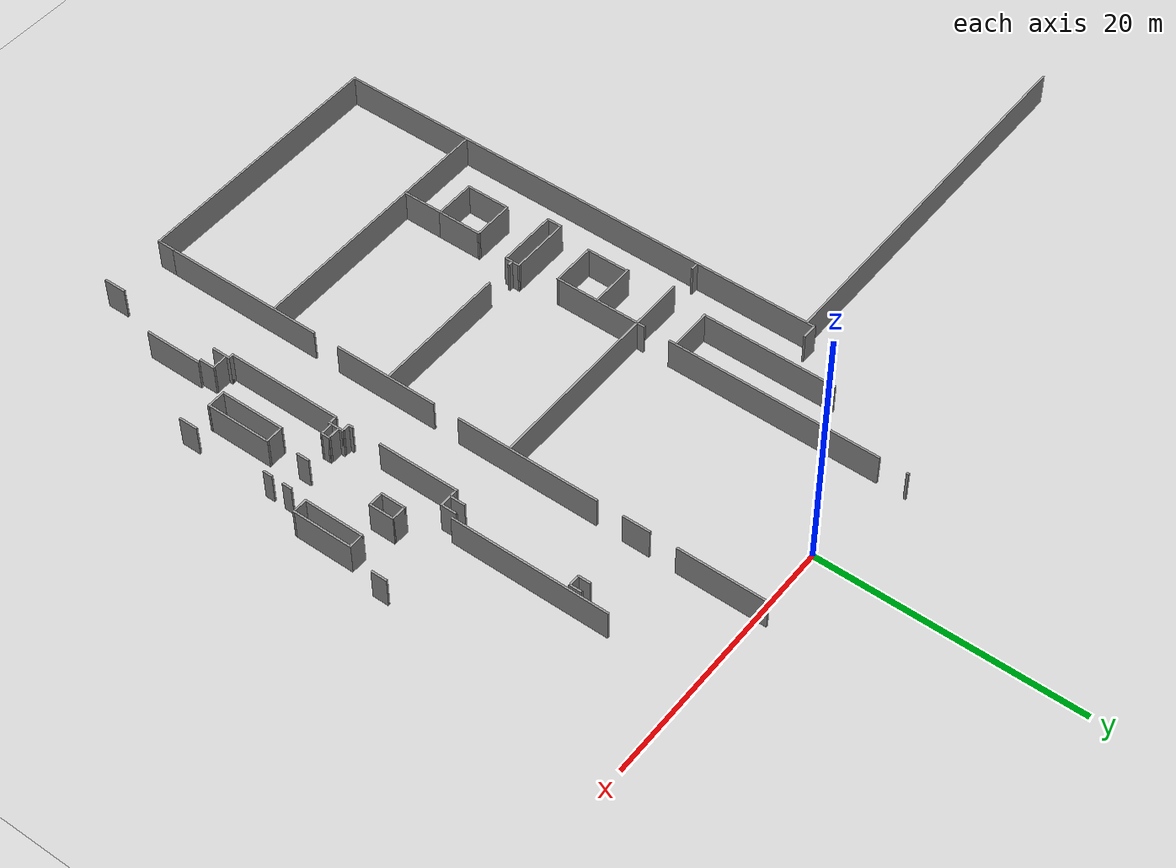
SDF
<sdf version="1.6">
 <world name="default">
  <model name="ground_plane">
   <static>1</static>
   <link name="link">
    <collision name="collision">
     <geometry><plane><normal>0 0 1</normal><size>100 100</size></plane></geometry>
     <surface><friction><ode><mu>100</mu><mu2>50</mu2></ode></friction></surface>
    </collision>
    <visual name="visual">
     <cast_shadows>0</cast_shadows>
     <geometry><plane><normal>0 0 1</normal><size>100 100</size></plane></geometry>
     <material>
      <script><uri>file://media/materials/scripts/gazebo.material</uri><name>Gazebo/Grey</name></script>
     </material>
    </visual>
   </link>
  </model>
  <model name="SEH_v11">
   <pose>0.537033 1.18809 0 0 -0 0</pose>
   <link name="Wall_1">
    <collision name="Wall_1_Collision">
     <geometry><box><size>39.75 0.15 2.5</size></box></geometry>
     <pose>0 0 1.25 0 -0 0</pose>
    </collision>
    <visual name="Wall_1_Visual">
     <pose>0 0 1.25 0 -0 0</pose>
     <geometry><box><size>39.75 0.15 2.5</size></box></geometry>
     <material>
      <script><uri>file://media/materials/scripts/gazebo.material</uri><name>Gazebo/Grey</name></script>
      <ambient>1 1 1 1</ambient>
     </material>
     <meta><layer>0</layer></meta>
    </visual>
    <pose>-14.7042 -30.8362 0 0 0 -1.5708</pose>
   </link>
   <link name="Wall_117">
    <collision name="Wall_117_Collision">
     <geometry><box><size>1.25 0.15 2.5</size></box></geometry>
     <pose>0 0 1.25 0 -0 0</pose>
    </collision>
    <visual name="Wall_117_Visual">
     <pose>0 0 1.25 0 -0 0</pose>
     <geometry><box><size>1.25 0.15 2.5</size></box></geometry>
     <material>
      <script><uri>file://media/materials/scripts/gazebo.material</uri><name>Gazebo/Grey</name></script>
      <ambient>1 1 1 1</ambient>
     </material>
     <meta><layer>0</layer></meta>
    </visual>
    <pose>10.921 -20.3863 0 0 0 -1.5708</pose>
   </link>
   <link name="Wall_119">
    <collision name="Wall_119_Collision">
     <geometry><box><size>0.75 0.15 2.5</size></box></geometry>
     <pose>0 0 1.25 0 -0 0</pose>
    </collision>
    <visual name="Wall_119_Visual">
     <pose>0 0 1.25 0 -0 0</pose>
     <geometry><box><size>0.75 0.15 2.5</size></box></geometry>
     <material>
      <script><uri>file://media/materials/scripts/gazebo.material</uri><name>Gazebo/Grey</name></script>
      <ambient>1 1 1 1</ambient>
     </material>
     <meta><layer>0</layer></meta>
    </visual>
    <pose>10.621 -20.9363 0 0 -0 3.14159</pose>
   </link>
   <link name="Wall_120">
    <pose>10.321 -25.3613 0 0 0 -1.5708</pose>
    <visual name="Wall_120_Visual_0">
     <pose>-1.31579 0 1.25 0 -0 0</pose>
     <geometry><box><size>6.36842 0.15 2.5</size></box></geometry>
     <material>
      <script><uri>file://media/materials/scripts/gazebo.material</uri><name>Gazebo/Grey</name></script>
      <ambient>1 1 1 1</ambient>
     </material>
     <meta><layer>0</layer></meta>
    </visual>
    <collision name="Wall_120_Collision_0">
     <geometry><box><size>6.36842 0.15 2.5</size></box></geometry>
     <pose>-1.31579 0 1.25 0 -0 0</pose>
    </collision>
    <visual name="Wall_120_Visual_1">
     <pose>4.29921 0 1.25 0 -0 0</pose>
     <geometry><box><size>0.401581 0.15 2.5</size></box></geometry>
     <material>
      <script><uri>file://media/materials/scripts/gazebo.material</uri><name>Gazebo/Grey</name></script>
      <ambient>1 1 1 1</ambient>
     </material>
     <meta><layer>0</layer></meta>
    </visual>
    <collision name="Wall_120_Collision_1">
     <geometry><box><size>0.401581 0.15 2.5</size></box></geometry>
     <pose>4.29921 0 1.25 0 -0 0</pose>
    </collision>
   </link>
   <link name="Wall_121">
    <collision name="Wall_121_Collision">
     <geometry><box><size>0.75 0.15 2.5</size></box></geometry>
     <pose>0 0 1.25 0 -0 0</pose>
    </collision>
    <visual name="Wall_121_Visual">
     <pose>0 0 1.25 0 -0 0</pose>
     <geometry><box><size>0.75 0.15 2.5</size></box></geometry>
     <material>
      <script><uri>file://media/materials/scripts/gazebo.material</uri><name>Gazebo/Grey</name></script>
      <ambient>1 1 1 1</ambient>
     </material>
     <meta><layer>0</layer></meta>
    </visual>
    <pose>10.621 -29.7863 0 0 -0 0</pose>
   </link>
   <link name="Wall_122">
    <collision name="Wall_122_Collision">
     <geometry><box><size>1.25 0.15 2.5</size></box></geometry>
     <pose>0 0 1.25 0 -0 0</pose>
    </collision>
    <visual name="Wall_122_Visual">
     <pose>0 0 1.25 0 -0 0</pose>
     <geometry><box><size>1.25 0.15 2.5</size></box></geometry>
     <material>
      <script><uri>file://media/materials/scripts/gazebo.material</uri><name>Gazebo/Grey</name></script>
      <ambient>1 1 1 1</ambient>
     </material>
     <meta><layer>0</layer></meta>
    </visual>
    <pose>10.921 -30.3363 0 0 0 -1.5708</pose>
   </link>
   <link name="Wall_123">
    <collision name="Wall_123_Collision">
     <geometry><box><size>0.75 0.15 2.5</size></box></geometry>
     <pose>0 0 1.25 0 -0 0</pose>
    </collision>
    <visual name="Wall_123_Visual">
     <pose>0 0 1.25 0 -0 0</pose>
     <geometry><box><size>0.75 0.15 2.5</size></box></geometry>
     <material>
      <script><uri>file://media/materials/scripts/gazebo.material</uri><name>Gazebo/Grey</name></script>
      <ambient>1 1 1 1</ambient>
     </material>
     <meta><layer>0</layer></meta>
    </visual>
    <pose>10.621 -30.8863 0 0 -0 3.14159</pose>
   </link>
   <link name="Wall_124">
    <collision name="Wall_124_Collision">
     <geometry><box><size>9 0.15 2.5</size></box></geometry>
     <pose>0 0 1.25 0 -0 0</pose>
    </collision>
    <visual name="Wall_124_Visual">
     <pose>0 0 1.25 0 -0 0</pose>
     <geometry><box><size>9 0.15 2.5</size></box></geometry>
     <material>
      <script><uri>file://media/materials/scripts/gazebo.material</uri><name>Gazebo/Grey</name></script>
      <ambient>1 1 1 1</ambient>
     </material>
     <meta><layer>0</layer></meta>
    </visual>
    <pose>10.321 -35.3113 0 0 0 -1.5708</pose>
   </link>
   <link name="Wall_125">
    <collision name="Wall_125_Collision">
     <geometry><box><size>0.5 0.15 2.5</size></box></geometry>
     <pose>0 0 1.25 0 -0 0</pose>
    </collision>
    <visual name="Wall_125_Visual">
     <pose>0 0 1.25 0 -0 0</pose>
     <geometry><box><size>0.5 0.15 2.5</size></box></geometry>
     <material>
      <script><uri>file://media/materials/scripts/gazebo.material</uri><name>Gazebo/Grey</name></script>
      <ambient>1 1 1 1</ambient>
     </material>
     <meta><layer>0</layer></meta>
    </visual>
    <pose>10.496 -39.7363 0 0 -0 0</pose>
   </link>
   <link name="Wall_126">
    <collision name="Wall_126_Collision">
     <geometry><box><size>1.5 0.15 2.5</size></box></geometry>
     <pose>0 0 1.25 0 -0 0</pose>
    </collision>
    <visual name="Wall_126_Visual">
     <pose>0 0 1.25 0 -0 0</pose>
     <geometry><box><size>1.5 0.15 2.5</size></box></geometry>
     <material>
      <script><uri>file://media/materials/scripts/gazebo.material</uri><name>Gazebo/Grey</name></script>
      <ambient>1 1 1 1</ambient>
     </material>
     <meta><layer>0</layer></meta>
    </visual>
    <pose>10.671 -40.4113 0 0 0 -1.5708</pose>
   </link>
   <link name="Wall_152">
    <collision name="Wall_152_Collision">
     <geometry><box><size>1 0.15 2.5</size></box></geometry>
     <pose>0 0 1.25 0 -0 0</pose>
    </collision>
    <visual name="Wall_152_Visual">
     <pose>0 0 1.25 0 -0 0</pose>
     <geometry><box><size>1 0.15 2.5</size></box></geometry>
     <material>
      <script><uri>file://media/materials/scripts/gazebo.material</uri><name>Gazebo/Grey</name></script>
      <ambient>1 1 1 1</ambient>
     </material>
     <meta><layer>0</layer></meta>
    </visual>
    <pose>14.0923 -30.3658 0 0 -0 1.5708</pose>
   </link>
   <link name="Wall_154">
    <collision name="Wall_154_Collision">
     <geometry><box><size>0.75 0.15 2.5</size></box></geometry>
     <pose>0 0 1.25 0 -0 0</pose>
    </collision>
    <visual name="Wall_154_Visual">
     <pose>0 0 1.25 0 -0 0</pose>
     <geometry><box><size>0.75 0.15 2.5</size></box></geometry>
     <material>
      <script><uri>file://media/materials/scripts/gazebo.material</uri><name>Gazebo/Grey</name></script>
      <ambient>1 1 1 1</ambient>
     </material>
     <meta><layer>0</layer></meta>
    </visual>
    <pose>16.4749 -29.6084 0 0 -0 1.5708</pose>
   </link>
   <link name="Wall_158">
    <collision name="Wall_158_Collision">
     <geometry><box><size>0.75 0.15 2.5</size></box></geometry>
     <pose>0 0 1.25 0 -0 0</pose>
    </collision>
    <visual name="Wall_158_Visual">
     <pose>0 0 1.25 0 -0 0</pose>
     <geometry><box><size>0.75 0.15 2.5</size></box></geometry>
     <material>
      <script><uri>file://media/materials/scripts/gazebo.material</uri><name>Gazebo/Grey</name></script>
      <ambient>1 1 1 1</ambient>
     </material>
     <meta><layer>0</layer></meta>
    </visual>
    <pose>16.4587 -31.2295 0 0 0 -1.5708</pose>
   </link>
   <link name="Wall_166">
    <collision name="Wall_166_Collision">
     <geometry><box><size>12.25 0.15 2.5</size></box></geometry>
     <pose>0 0 1.25 0 -0 0</pose>
    </collision>
    <visual name="Wall_166_Visual">
     <pose>0 0 1.25 0 -0 0</pose>
     <geometry><box><size>12.25 0.15 2.5</size></box></geometry>
     <material>
      <script><uri>file://media/materials/scripts/gazebo.material</uri><name>Gazebo/Grey</name></script>
      <ambient>1 1 1 1</ambient>
     </material>
     <meta><layer>0</layer></meta>
    </visual>
    <pose>12.1961 -13.6978 0 0 -0 1.5708</pose>
   </link>
   <link name="Wall_171">
    <collision name="Wall_171_Collision">
     <geometry><box><size>1 0.15 2.5</size></box></geometry>
     <pose>0 0 1.25 0 -0 0</pose>
    </collision>
    <visual name="Wall_171_Visual">
     <pose>0 0 1.25 0 -0 0</pose>
     <geometry><box><size>1 0.15 2.5</size></box></geometry>
     <material>
      <script><uri>file://media/materials/scripts/gazebo.material</uri><name>Gazebo/Grey</name></script>
      <ambient>1 1 1 1</ambient>
     </material>
     <meta><layer>0</layer></meta>
    </visual>
    <pose>11.0342 -10.3359 0 0 0 -1.5708</pose>
   </link>
   <link name="Wall_172">
    <collision name="Wall_172_Collision">
     <geometry><box><size>1 0.15 2.5</size></box></geometry>
     <pose>0 0 1.25 0 -0 0</pose>
    </collision>
    <visual name="Wall_172_Visual">
     <pose>0 0 1.25 0 -0 0</pose>
     <geometry><box><size>1 0.15 2.5</size></box></geometry>
     <material>
      <script><uri>file://media/materials/scripts/gazebo.material</uri><name>Gazebo/Grey</name></script>
      <ambient>1 1 1 1</ambient>
     </material>
     <meta><layer>0</layer></meta>
    </visual>
    <pose>11.4592 -10.7609 0 0 -0 0</pose>
   </link>
   <link name="Wall_173">
    <collision name="Wall_173_Collision">
     <geometry><box><size>1 0.15 2.5</size></box></geometry>
     <pose>0 0 1.25 0 -0 0</pose>
    </collision>
    <visual name="Wall_173_Visual">
     <pose>0 0 1.25 0 -0 0</pose>
     <geometry><box><size>1 0.15 2.5</size></box></geometry>
     <material>
      <script><uri>file://media/materials/scripts/gazebo.material</uri><name>Gazebo/Grey</name></script>
      <ambient>1 1 1 1</ambient>
     </material>
     <meta><layer>0</layer></meta>
    </visual>
    <pose>11.8842 -10.3359 0 0 -0 1.5708</pose>
   </link>
   <link name="Wall_2">
    <collision name="Wall_2_Collision">
     <geometry><box><size>20.5 0.15 2.5</size></box></geometry>
     <pose>0 0 1.25 0 -0 0</pose>
    </collision>
    <visual name="Wall_2_Visual">
     <pose>0 0 1.25 0 -0 0</pose>
     <geometry><box><size>20.5 0.15 2.5</size></box></geometry>
     <material>
      <script><uri>file://media/materials/scripts/gazebo.material</uri><name>Gazebo/Grey</name></script>
      <ambient>1 1 1 1</ambient>
     </material>
     <meta><layer>0</layer></meta>
    </visual>
    <pose>-4.52917 -50.6362 0 0 -0 0</pose>
   </link>
   <link name="Wall_3">
    <collision name="Wall_3_Collision">
     <geometry><box><size>1.5 0.15 2.5</size></box></geometry>
     <pose>0 0 1.25 0 -0 0</pose>
    </collision>
    <visual name="Wall_3_Visual">
     <pose>0 0 1.25 0 -0 0</pose>
     <geometry><box><size>1.5 0.15 2.5</size></box></geometry>
     <material>
      <script><uri>file://media/materials/scripts/gazebo.material</uri><name>Gazebo/Grey</name></script>
      <ambient>1 1 1 1</ambient>
     </material>
     <meta><layer>0</layer></meta>
    </visual>
    <pose>5.64583 -49.9612 0 0 -0 1.5708</pose>
   </link>
   <link name="Wall_311">
    <collision name="Wall_311_Collision">
     <geometry><box><size>1 0.15 2.5</size></box></geometry>
     <pose>0 0 1.25 0 -0 0</pose>
    </collision>
    <visual name="Wall_311_Visual">
     <pose>0 0 1.25 0 -0 0</pose>
     <geometry><box><size>1 0.15 2.5</size></box></geometry>
     <material>
      <script><uri>file://media/materials/scripts/gazebo.material</uri><name>Gazebo/Grey</name></script>
      <ambient>1 1 1 1</ambient>
     </material>
     <meta><layer>0</layer></meta>
    </visual>
    <pose>11.346 -20.9363 0 0 -0 0</pose>
   </link>
   <link name="Wall_312">
    <collision name="Wall_312_Collision">
     <geometry><box><size>1.25 0.15 2.5</size></box></geometry>
     <pose>0 0 1.25 0 -0 0</pose>
    </collision>
    <visual name="Wall_312_Visual">
     <pose>0 0 1.25 0 -0 0</pose>
     <geometry><box><size>1.25 0.15 2.5</size></box></geometry>
     <material>
      <script><uri>file://media/materials/scripts/gazebo.material</uri><name>Gazebo/Grey</name></script>
      <ambient>1 1 1 1</ambient>
     </material>
     <meta><layer>0</layer></meta>
    </visual>
    <pose>11.771 -20.3863 0 0 -0 1.5708</pose>
   </link>
   <link name="Wall_334">
    <collision name="Wall_334_Collision">
     <geometry><box><size>1 0.15 2.5</size></box></geometry>
     <pose>0 0 1.25 0 -0 0</pose>
    </collision>
    <visual name="Wall_334_Visual">
     <pose>0 0 1.25 0 -0 0</pose>
     <geometry><box><size>1 0.15 2.5</size></box></geometry>
     <material>
      <script><uri>file://media/materials/scripts/gazebo.material</uri><name>Gazebo/Grey</name></script>
      <ambient>1 1 1 1</ambient>
     </material>
     <meta><layer>0</layer></meta>
    </visual>
    <pose>11.464 -30.1067 0 0 -0 0</pose>
   </link>
   <link name="Wall_335">
    <collision name="Wall_335_Collision">
     <geometry><box><size>0.75 0.15 2.5</size></box></geometry>
     <pose>0 0 1.25 0 -0 0</pose>
    </collision>
    <visual name="Wall_335_Visual">
     <pose>0 0 1.25 0 -0 0</pose>
     <geometry><box><size>0.75 0.15 2.5</size></box></geometry>
     <material>
      <script><uri>file://media/materials/scripts/gazebo.material</uri><name>Gazebo/Grey</name></script>
      <ambient>1 1 1 1</ambient>
     </material>
     <meta><layer>0</layer></meta>
    </visual>
    <pose>11.889 -30.4067 0 0 0 -1.5708</pose>
   </link>
   <link name="Wall_336">
    <collision name="Wall_336_Collision">
     <geometry><box><size>1 0.15 2.5</size></box></geometry>
     <pose>0 0 1.25 0 -0 0</pose>
    </collision>
    <visual name="Wall_336_Visual">
     <pose>0 0 1.25 0 -0 0</pose>
     <geometry><box><size>1 0.15 2.5</size></box></geometry>
     <material>
      <script><uri>file://media/materials/scripts/gazebo.material</uri><name>Gazebo/Grey</name></script>
      <ambient>1 1 1 1</ambient>
     </material>
     <meta><layer>0</layer></meta>
    </visual>
    <pose>11.464 -30.7067 0 0 -0 3.14159</pose>
   </link>
   <link name="Wall_346">
    <collision name="Wall_346_Collision">
     <geometry><box><size>1.25 0.15 2.5</size></box></geometry>
     <pose>0 0 1.25 0 -0 0</pose>
    </collision>
    <visual name="Wall_346_Visual">
     <pose>0 0 1.25 0 -0 0</pose>
     <geometry><box><size>1.25 0.15 2.5</size></box></geometry>
     <material>
      <script><uri>file://media/materials/scripts/gazebo.material</uri><name>Gazebo/Grey</name></script>
      <ambient>1 1 1 1</ambient>
     </material>
     <meta><layer>0</layer></meta>
    </visual>
    <pose>18.3905 -20.4581 0 0 0 -1.5708</pose>
   </link>
   <link name="Wall_352">
    <collision name="Wall_352_Collision">
     <geometry><box><size>1.25 0.15 2.5</size></box></geometry>
     <pose>0 0 1.25 0 -0 0</pose>
    </collision>
    <visual name="Wall_352_Visual">
     <pose>0 0 1.25 0 -0 0</pose>
     <geometry><box><size>1.25 0.15 2.5</size></box></geometry>
     <material>
      <script><uri>file://media/materials/scripts/gazebo.material</uri><name>Gazebo/Grey</name></script>
      <ambient>1 1 1 1</ambient>
     </material>
     <meta><layer>0</layer></meta>
    </visual>
    <pose>11.9149 -40.5402 0 0 0 -1.5708</pose>
   </link>
   <link name="Wall_354">
    <collision name="Wall_354_Collision">
     <geometry><box><size>1.25 0.15 2.5</size></box></geometry>
     <pose>0 0 1.25 0 -0 0</pose>
    </collision>
    <visual name="Wall_354_Visual">
     <pose>0 0 1.25 0 -0 0</pose>
     <geometry><box><size>1.25 0.15 2.5</size></box></geometry>
     <material>
      <script><uri>file://media/materials/scripts/gazebo.material</uri><name>Gazebo/Grey</name></script>
      <ambient>1 1 1 1</ambient>
     </material>
     <meta><layer>0</layer></meta>
    </visual>
    <pose>11.3649 -39.9902 0 0 -0 3.14159</pose>
   </link>
   <link name="Wall_393">
    <collision name="Wall_393_Collision">
     <geometry><box><size>4.5 0.15 2.5</size></box></geometry>
     <pose>0 0 1.25 0 -0 0</pose>
    </collision>
    <visual name="Wall_393_Visual">
     <pose>0 0 1.25 0 -0 0</pose>
     <geometry><box><size>4.5 0.15 2.5</size></box></geometry>
     <material>
      <script><uri>file://media/materials/scripts/gazebo.material</uri><name>Gazebo/Grey</name></script>
      <ambient>1 1 1 1</ambient>
     </material>
     <meta><layer>0</layer></meta>
    </visual>
    <pose>12.1692 -43.2872 0 0 0 -1.5708</pose>
   </link>
   <link name="Wall_406">
    <collision name="Wall_406_Collision">
     <geometry><box><size>1.5 0.15 2.5</size></box></geometry>
     <pose>0 0 1.25 0 -0 0</pose>
    </collision>
    <visual name="Wall_406_Visual">
     <pose>0 0 1.25 0 -0 0</pose>
     <geometry><box><size>1.5 0.15 2.5</size></box></geometry>
     <material>
      <script><uri>file://media/materials/scripts/gazebo.material</uri><name>Gazebo/Grey</name></script>
      <ambient>1 1 1 1</ambient>
     </material>
     <meta><layer>0</layer></meta>
    </visual>
    <pose>13.7951 -33.0565 0 0 -0 0</pose>
   </link>
   <link name="Wall_407">
    <collision name="Wall_407_Collision">
     <geometry><box><size>5.11112 0.15 2.5</size></box></geometry>
     <pose>0 0 1.25 0 -0 0</pose>
    </collision>
    <visual name="Wall_407_Visual">
     <pose>0 0 1.25 0 -0 0</pose>
     <geometry><box><size>5.11112 0.15 2.5</size></box></geometry>
     <material>
      <script><uri>file://media/materials/scripts/gazebo.material</uri><name>Gazebo/Grey</name></script>
      <ambient>1 1 1 1</ambient>
     </material>
     <meta><layer>0</layer></meta>
    </visual>
    <pose>14.4701 -35.5366 0 0 0 -1.5708</pose>
   </link>
   <link name="Wall_408">
    <collision name="Wall_408_Collision">
     <geometry><box><size>1.5 0.15 2.5</size></box></geometry>
     <pose>0 0 1.25 0 -0 0</pose>
    </collision>
    <visual name="Wall_408_Visual">
     <pose>0 0 1.25 0 -0 0</pose>
     <geometry><box><size>1.5 0.15 2.5</size></box></geometry>
     <material>
      <script><uri>file://media/materials/scripts/gazebo.material</uri><name>Gazebo/Grey</name></script>
      <ambient>1 1 1 1</ambient>
     </material>
     <meta><layer>0</layer></meta>
    </visual>
    <pose>13.8272 -38.0167 0 0 -0 3.14159</pose>
   </link>
   <link name="Wall_409">
    <collision name="Wall_409_Collision">
     <geometry><box><size>5.11112 0.15 2.5</size></box></geometry>
     <pose>0 0 1.25 0 -0 0</pose>
    </collision>
    <visual name="Wall_409_Visual">
     <pose>0 0 1.25 0 -0 0</pose>
     <geometry><box><size>5.11112 0.15 2.5</size></box></geometry>
     <material>
      <script><uri>file://media/materials/scripts/gazebo.material</uri><name>Gazebo/Grey</name></script>
      <ambient>1 1 1 1</ambient>
     </material>
     <meta><layer>0</layer></meta>
    </visual>
    <pose>13.1201 -35.5366 0 0 -0 1.5708</pose>
   </link>
   <link name="Wall_411">
    <collision name="Wall_411_Collision">
     <geometry><box><size>1.5 0.15 2.5</size></box></geometry>
     <pose>0 0 1.25 0 -0 0</pose>
    </collision>
    <visual name="Wall_411_Visual">
     <pose>0 0 1.25 0 -0 0</pose>
     <geometry><box><size>1.5 0.15 2.5</size></box></geometry>
     <material>
      <script><uri>file://media/materials/scripts/gazebo.material</uri><name>Gazebo/Grey</name></script>
      <ambient>1 1 1 1</ambient>
     </material>
     <meta><layer>0</layer></meta>
    </visual>
    <pose>16.4158 -38.0471 0 0 0 -1.5708</pose>
   </link>
   <link name="Wall_421">
    <collision name="Wall_421_Collision">
     <geometry><box><size>1.25 0.15 2.5</size></box></geometry>
     <pose>0 0 1.25 0 -0 0</pose>
    </collision>
    <visual name="Wall_421_Visual">
     <pose>0 0 1.25 0 -0 0</pose>
     <geometry><box><size>1.25 0.15 2.5</size></box></geometry>
     <material>
      <script><uri>file://media/materials/scripts/gazebo.material</uri><name>Gazebo/Grey</name></script>
      <ambient>1 1 1 1</ambient>
     </material>
     <meta><layer>0</layer></meta>
    </visual>
    <pose>13.9055 -24.496 0 0 -0 0</pose>
   </link>
   <link name="Wall_426">
    <collision name="Wall_426_Collision">
     <geometry><box><size>1.25 0.15 2.5</size></box></geometry>
     <pose>0 0 1.25 0 -0 0</pose>
    </collision>
    <visual name="Wall_426_Visual">
     <pose>0 0 1.25 0 -0 0</pose>
     <geometry><box><size>1.25 0.15 2.5</size></box></geometry>
     <material>
      <script><uri>file://media/materials/scripts/gazebo.material</uri><name>Gazebo/Grey</name></script>
      <ambient>1 1 1 1</ambient>
     </material>
     <meta><layer>0</layer></meta>
    </visual>
    <pose>17.1863 -27.9261 0 0 -0 3.14159</pose>
   </link>
   <link name="Wall_436">
    <pose>-7.92296 -13.064 0 0 0 -1.5708</pose>
    <visual name="Wall_436_Visual_0">
     <pose>-13.906 0 1.25 0 -0 0</pose>
     <geometry><box><size>0.187914 0.15 2.5</size></box></geometry>
     <material>
      <script><uri>file://media/materials/scripts/gazebo.material</uri><name>Gazebo/Grey</name></script>
      <ambient>1 1 1 1</ambient>
     </material>
     <meta><layer>0</layer></meta>
    </visual>
    <collision name="Wall_436_Collision_0">
     <geometry><box><size>0.187914 0.15 2.5</size></box></geometry>
     <pose>-13.906 0 1.25 0 -0 0</pose>
    </collision>
    <visual name="Wall_436_Visual_1">
     <pose>-3.54198 0 1.25 0 -0 0</pose>
     <geometry><box><size>16.5402 0.15 2.5</size></box></geometry>
     <material>
      <script><uri>file://media/materials/scripts/gazebo.material</uri><name>Gazebo/Grey</name></script>
      <ambient>1 1 1 1</ambient>
     </material>
     <meta><layer>0</layer></meta>
    </visual>
    <collision name="Wall_436_Collision_1">
     <geometry><box><size>16.5402 0.15 2.5</size></box></geometry>
     <pose>-3.54198 0 1.25 0 -0 0</pose>
    </collision>
    <visual name="Wall_436_Visual_2">
     <pose>10.3641 0 1.25 0 -0 0</pose>
     <geometry><box><size>7.27187 0.15 2.5</size></box></geometry>
     <material>
      <script><uri>file://media/materials/scripts/gazebo.material</uri><name>Gazebo/Grey</name></script>
      <ambient>1 1 1 1</ambient>
     </material>
     <meta><layer>0</layer></meta>
    </visual>
    <collision name="Wall_436_Collision_2">
     <geometry><box><size>7.27187 0.15 2.5</size></box></geometry>
     <pose>10.3641 0 1.25 0 -0 0</pose>
    </collision>
   </link>
   <link name="Wall_439">
    <collision name="Wall_439_Collision">
     <geometry><box><size>3.5 0.15 2.5</size></box></geometry>
     <pose>0 0 1.25 0 -0 0</pose>
    </collision>
    <visual name="Wall_439_Visual">
     <pose>0 0 1.25 0 -0 0</pose>
     <geometry><box><size>3.5 0.15 2.5</size></box></geometry>
     <material>
      <script><uri>file://media/materials/scripts/gazebo.material</uri><name>Gazebo/Grey</name></script>
      <ambient>1 1 1 1</ambient>
     </material>
     <meta><layer>0</layer></meta>
    </visual>
    <pose>-9.67191 -23.75 0 0 -0 0</pose>
   </link>
   <link name="Wall_441">
    <pose>-11.3199 -20.4056 0 0 -0 3.14159</pose>
    <visual name="Wall_441_Visual_0">
     <pose>-1.31377 0 1.25 0 -0 0</pose>
     <geometry><box><size>4.12247 0.15 2.5</size></box></geometry>
     <material>
      <script><uri>file://media/materials/scripts/gazebo.material</uri><name>Gazebo/Grey</name></script>
      <ambient>1 1 1 1</ambient>
     </material>
     <meta><layer>0</layer></meta>
    </visual>
    <collision name="Wall_441_Collision_0">
     <geometry><box><size>4.12247 0.15 2.5</size></box></geometry>
     <pose>-1.31377 0 1.25 0 -0 0</pose>
    </collision>
    <visual name="Wall_441_Visual_1">
     <pose>3.06123 0 1.25 0 -0 0</pose>
     <geometry><box><size>0.627535 0.15 2.5</size></box></geometry>
     <material>
      <script><uri>file://media/materials/scripts/gazebo.material</uri><name>Gazebo/Grey</name></script>
      <ambient>1 1 1 1</ambient>
     </material>
     <meta><layer>0</layer></meta>
    </visual>
    <collision name="Wall_441_Collision_1">
     <geometry><box><size>0.627535 0.15 2.5</size></box></geometry>
     <pose>3.06123 0 1.25 0 -0 0</pose>
    </collision>
   </link>
   <link name="Wall_445">
    <collision name="Wall_445_Collision">
     <geometry><box><size>3.25 0.15 2.5</size></box></geometry>
     <pose>0 0 1.25 0 -0 0</pose>
    </collision>
    <visual name="Wall_445_Visual">
     <pose>0 0 1.25 0 -0 0</pose>
     <geometry><box><size>3.25 0.15 2.5</size></box></geometry>
     <material>
      <script><uri>file://media/materials/scripts/gazebo.material</uri><name>Gazebo/Grey</name></script>
      <ambient>1 1 1 1</ambient>
     </material>
     <meta><layer>0</layer></meta>
    </visual>
    <pose>-9.61585 -17.2607 0 0 -0 0</pose>
   </link>
   <link name="Wall_449">
    <collision name="Wall_449_Collision">
     <geometry><box><size>10.5 0.15 2.5</size></box></geometry>
     <pose>0 0 1.25 0 -0 0</pose>
    </collision>
    <visual name="Wall_449_Visual">
     <pose>0 0 1.25 0 -0 0</pose>
     <geometry><box><size>10.5 0.15 2.5</size></box></geometry>
     <material>
      <script><uri>file://media/materials/scripts/gazebo.material</uri><name>Gazebo/Grey</name></script>
      <ambient>1 1 1 1</ambient>
     </material>
     <meta><layer>0</layer></meta>
    </visual>
    <pose>-11.1659 -12.0857 0 0 -0 1.5708</pose>
   </link>
   <link name="Wall_455">
    <collision name="Wall_455_Collision">
     <geometry><box><size>1.25 0.15 2.5</size></box></geometry>
     <pose>0 0 1.25 0 -0 0</pose>
    </collision>
    <visual name="Wall_455_Visual">
     <pose>0 0 1.25 0 -0 0</pose>
     <geometry><box><size>1.25 0.15 2.5</size></box></geometry>
     <material>
      <script><uri>file://media/materials/scripts/gazebo.material</uri><name>Gazebo/Grey</name></script>
      <ambient>1 1 1 1</ambient>
     </material>
     <meta><layer>0</layer></meta>
    </visual>
    <pose>-14.1849 -10.9203 0 0 -0 3.14159</pose>
   </link>
   <link name="Wall_463">
    <collision name="Wall_463_Collision">
     <geometry><box><size>13.75 0.15 2.5</size></box></geometry>
     <pose>0 0 1.25 0 -0 0</pose>
    </collision>
    <visual name="Wall_463_Visual">
     <pose>0 0 1.25 0 -0 0</pose>
     <geometry><box><size>13.75 0.15 2.5</size></box></geometry>
     <material>
      <script><uri>file://media/materials/scripts/gazebo.material</uri><name>Gazebo/Grey</name></script>
      <ambient>1 1 1 1</ambient>
     </material>
     <meta><layer>0</layer></meta>
    </visual>
    <pose>-1.21986 -20.4056 0 0 -0 0</pose>
   </link>
   <link name="Wall_465">
    <collision name="Wall_465_Collision">
     <geometry><box><size>1.25 0.15 2.5</size></box></geometry>
     <pose>0 0 1.25 0 -0 0</pose>
    </collision>
    <visual name="Wall_465_Visual">
     <pose>0 0 1.25 0 -0 0</pose>
     <geometry><box><size>1.25 0.15 2.5</size></box></geometry>
     <material>
      <script><uri>file://media/materials/scripts/gazebo.material</uri><name>Gazebo/Grey</name></script>
      <ambient>1 1 1 1</ambient>
     </material>
     <meta><layer>0</layer></meta>
    </visual>
    <pose>-11.9119 -30.4026 0 0 0 -1.5708</pose>
   </link>
   <link name="Wall_466">
    <collision name="Wall_466_Collision">
     <geometry><box><size>4.75 0.15 2.5</size></box></geometry>
     <pose>0 0 1.25 0 -0 0</pose>
    </collision>
    <visual name="Wall_466_Visual">
     <pose>0 0 1.25 0 -0 0</pose>
     <geometry><box><size>4.75 0.15 2.5</size></box></geometry>
     <material>
      <script><uri>file://media/materials/scripts/gazebo.material</uri><name>Gazebo/Grey</name></script>
      <ambient>1 1 1 1</ambient>
     </material>
     <meta><layer>0</layer></meta>
    </visual>
    <pose>-9.61189 -30.9526 0 0 -0 0</pose>
   </link>
   <link name="Wall_467">
    <collision name="Wall_467_Collision">
     <geometry><box><size>1.25 0.15 2.5</size></box></geometry>
     <pose>0 0 1.25 0 -0 0</pose>
    </collision>
    <visual name="Wall_467_Visual">
     <pose>0 0 1.25 0 -0 0</pose>
     <geometry><box><size>1.25 0.15 2.5</size></box></geometry>
     <material>
      <script><uri>file://media/materials/scripts/gazebo.material</uri><name>Gazebo/Grey</name></script>
      <ambient>1 1 1 1</ambient>
     </material>
     <meta><layer>0</layer></meta>
    </visual>
    <pose>-7.31189 -30.4026 0 0 -0 1.5708</pose>
   </link>
   <link name="Wall_468">
    <collision name="Wall_468_Collision">
     <geometry><box><size>4.75 0.15 2.5</size></box></geometry>
     <pose>0 0 1.25 0 -0 0</pose>
    </collision>
    <visual name="Wall_468_Visual">
     <pose>0 0 1.25 0 -0 0</pose>
     <geometry><box><size>4.75 0.15 2.5</size></box></geometry>
     <material>
      <script><uri>file://media/materials/scripts/gazebo.material</uri><name>Gazebo/Grey</name></script>
      <ambient>1 1 1 1</ambient>
     </material>
     <meta><layer>0</layer></meta>
    </visual>
    <pose>-9.61189 -29.8526 0 0 -0 3.14159</pose>
   </link>
   <link name="Wall_470">
    <pose>-0.78596 -30.4235 0 0 -0 0</pose>
    <visual name="Wall_470_Visual_0">
     <pose>-6.31304 0 1.25 0 -0 0</pose>
     <geometry><box><size>0.373925 0.15 2.5</size></box></geometry>
     <material>
      <script><uri>file://media/materials/scripts/gazebo.material</uri><name>Gazebo/Grey</name></script>
      <ambient>1 1 1 1</ambient>
     </material>
     <meta><layer>0</layer></meta>
    </visual>
    <collision name="Wall_470_Collision_0">
     <geometry><box><size>0.373925 0.15 2.5</size></box></geometry>
     <pose>-6.31304 0 1.25 0 -0 0</pose>
    </collision>
    <visual name="Wall_470_Visual_1">
     <pose>1.18696 0 1.25 0 -0 0</pose>
     <geometry><box><size>10.6261 0.15 2.5</size></box></geometry>
     <material>
      <script><uri>file://media/materials/scripts/gazebo.material</uri><name>Gazebo/Grey</name></script>
      <ambient>1 1 1 1</ambient>
     </material>
     <meta><layer>0</layer></meta>
    </visual>
    <collision name="Wall_470_Collision_1">
     <geometry><box><size>10.6261 0.15 2.5</size></box></geometry>
     <pose>1.18696 0 1.25 0 -0 0</pose>
    </collision>
   </link>
   <link name="Wall_472">
    <collision name="Wall_472_Collision">
     <geometry><box><size>3.5 0.15 2.5</size></box></geometry>
     <pose>0 0 1.25 0 -0 0</pose>
    </collision>
    <visual name="Wall_472_Visual">
     <pose>0 0 1.25 0 -0 0</pose>
     <geometry><box><size>3.5 0.15 2.5</size></box></geometry>
     <material>
      <script><uri>file://media/materials/scripts/gazebo.material</uri><name>Gazebo/Grey</name></script>
      <ambient>1 1 1 1</ambient>
     </material>
     <meta><layer>0</layer></meta>
    </visual>
    <pose>-11.1011 -35.5544 0 0 0 -1.5708</pose>
   </link>
   <link name="Wall_473">
    <collision name="Wall_473_Collision">
     <geometry><box><size>3.25 0.15 2.5</size></box></geometry>
     <pose>0 0 1.25 0 -0 0</pose>
    </collision>
    <visual name="Wall_473_Visual">
     <pose>0 0 1.25 0 -0 0</pose>
     <geometry><box><size>3.25 0.15 2.5</size></box></geometry>
     <material>
      <script><uri>file://media/materials/scripts/gazebo.material</uri><name>Gazebo/Grey</name></script>
      <ambient>1 1 1 1</ambient>
     </material>
     <meta><layer>0</layer></meta>
    </visual>
    <pose>-9.55108 -37.2294 0 0 -0 0</pose>
   </link>
   <link name="Wall_474">
    <collision name="Wall_474_Collision">
     <geometry><box><size>3.5 0.15 2.5</size></box></geometry>
     <pose>0 0 1.25 0 -0 0</pose>
    </collision>
    <visual name="Wall_474_Visual">
     <pose>0 0 1.25 0 -0 0</pose>
     <geometry><box><size>3.5 0.15 2.5</size></box></geometry>
     <material>
      <script><uri>file://media/materials/scripts/gazebo.material</uri><name>Gazebo/Grey</name></script>
      <ambient>1 1 1 1</ambient>
     </material>
     <meta><layer>0</layer></meta>
    </visual>
    <pose>-8.00108 -35.5544 0 0 -0 1.5708</pose>
   </link>
   <link name="Wall_475">
    <collision name="Wall_475_Collision">
     <geometry><box><size>3.25 0.15 2.5</size></box></geometry>
     <pose>0 0 1.25 0 -0 0</pose>
    </collision>
    <visual name="Wall_475_Visual">
     <pose>0 0 1.25 0 -0 0</pose>
     <geometry><box><size>3.25 0.15 2.5</size></box></geometry>
     <material>
      <script><uri>file://media/materials/scripts/gazebo.material</uri><name>Gazebo/Grey</name></script>
      <ambient>1 1 1 1</ambient>
     </material>
     <meta><layer>0</layer></meta>
    </visual>
    <pose>-9.55108 -33.8794 0 0 -0 3.14159</pose>
   </link>
   <link name="Wall_477">
    <collision name="Wall_477_Collision">
     <geometry><box><size>3.25 0.15 2.5</size></box></geometry>
     <pose>0 0 1.25 0 -0 0</pose>
    </collision>
    <visual name="Wall_477_Visual">
     <pose>0 0 1.25 0 -0 0</pose>
     <geometry><box><size>3.25 0.15 2.5</size></box></geometry>
     <material>
      <script><uri>file://media/materials/scripts/gazebo.material</uri><name>Gazebo/Grey</name></script>
      <ambient>1 1 1 1</ambient>
     </material>
     <meta><layer>0</layer></meta>
    </visual>
    <pose>-8.00108 -38.7794 0 0 0 -1.5708</pose>
   </link>
   <link name="Wall_478">
    <collision name="Wall_478_Collision">
     <geometry><box><size>6.75 0.15 2.5</size></box></geometry>
     <pose>0 0 1.25 0 -0 0</pose>
    </collision>
    <visual name="Wall_478_Visual">
     <pose>0 0 1.25 0 -0 0</pose>
     <geometry><box><size>6.75 0.15 2.5</size></box></geometry>
     <material>
      <script><uri>file://media/materials/scripts/gazebo.material</uri><name>Gazebo/Grey</name></script>
      <ambient>1 1 1 1</ambient>
     </material>
     <meta><layer>0</layer></meta>
    </visual>
    <pose>-11.3011 -40.3294 0 0 -0 3.14159</pose>
   </link>
   <link name="Wall_480">
    <collision name="Wall_480_Collision">
     <geometry><box><size>13.75 0.15 2.5</size></box></geometry>
     <pose>0 0 1.25 0 -0 0</pose>
    </collision>
    <visual name="Wall_480_Visual">
     <pose>0 0 1.25 0 -0 0</pose>
     <geometry><box><size>13.75 0.15 2.5</size></box></geometry>
     <material>
      <script><uri>file://media/materials/scripts/gazebo.material</uri><name>Gazebo/Grey</name></script>
      <ambient>1 1 1 1</ambient>
     </material>
     <meta><layer>0</layer></meta>
    </visual>
    <pose>-1.20108 -40.3294 0 0 -0 0</pose>
   </link>
   <link name="Wall_499">
    <collision name="Wall_499_Collision">
     <geometry><box><size>3.5 0.15 2.5</size></box></geometry>
     <pose>0 0 1.25 0 -0 0</pose>
    </collision>
    <visual name="Wall_499_Visual">
     <pose>0 0 1.25 0 -0 0</pose>
     <geometry><box><size>3.5 0.15 2.5</size></box></geometry>
     <material>
      <script><uri>file://media/materials/scripts/gazebo.material</uri><name>Gazebo/Grey</name></script>
      <ambient>1 1 1 1</ambient>
     </material>
     <meta><layer>0</layer></meta>
    </visual>
    <pose>-9.59796 -26.989 0 0 -0 3.14159</pose>
   </link>
   <link name="Wall_500">
    <collision name="Wall_500_Collision">
     <geometry><box><size>3.25 0.15 2.5</size></box></geometry>
     <pose>0 0 1.25 0 -0 0</pose>
    </collision>
    <visual name="Wall_500_Visual">
     <pose>0 0 1.25 0 -0 0</pose>
     <geometry><box><size>3.25 0.15 2.5</size></box></geometry>
     <material>
      <script><uri>file://media/materials/scripts/gazebo.material</uri><name>Gazebo/Grey</name></script>
      <ambient>1 1 1 1</ambient>
     </material>
     <meta><layer>0</layer></meta>
    </visual>
    <pose>-11.273 -25.439 0 0 -0 1.5708</pose>
   </link>
   <link name="Wall_502">
    <collision name="Wall_502_Collision">
     <geometry><box><size>2 0.15 2.5</size></box></geometry>
     <pose>0 0 1.25 0 -0 0</pose>
    </collision>
    <visual name="Wall_502_Visual">
     <pose>0 0 1.25 0 -0 0</pose>
     <geometry><box><size>2 0.15 2.5</size></box></geometry>
     <material>
      <script><uri>file://media/materials/scripts/gazebo.material</uri><name>Gazebo/Grey</name></script>
      <ambient>1 1 1 1</ambient>
     </material>
     <meta><layer>0</layer></meta>
    </visual>
    <pose>14.4555 -23.571 0 0 -0 1.5708</pose>
   </link>
   <link name="Wall_503">
    <collision name="Wall_503_Collision">
     <geometry><box><size>1.25 0.15 2.5</size></box></geometry>
     <pose>0 0 1.25 0 -0 0</pose>
    </collision>
    <visual name="Wall_503_Visual">
     <pose>0 0 1.25 0 -0 0</pose>
     <geometry><box><size>1.25 0.15 2.5</size></box></geometry>
     <material>
      <script><uri>file://media/materials/scripts/gazebo.material</uri><name>Gazebo/Grey</name></script>
      <ambient>1 1 1 1</ambient>
     </material>
     <meta><layer>0</layer></meta>
    </visual>
    <pose>13.9055 -22.646 0 0 -0 3.14159</pose>
   </link>
   <link name="Wall_504">
    <collision name="Wall_504_Collision">
     <geometry><box><size>2 0.15 2.5</size></box></geometry>
     <pose>0 0 1.25 0 -0 0</pose>
    </collision>
    <visual name="Wall_504_Visual">
     <pose>0 0 1.25 0 -0 0</pose>
     <geometry><box><size>2 0.15 2.5</size></box></geometry>
     <material>
      <script><uri>file://media/materials/scripts/gazebo.material</uri><name>Gazebo/Grey</name></script>
      <ambient>1 1 1 1</ambient>
     </material>
     <meta><layer>0</layer></meta>
    </visual>
    <pose>13.3555 -23.571 0 0 0 -1.5708</pose>
   </link>
   <link name="Wall_506">
    <collision name="Wall_506_Collision">
     <geometry><box><size>4.75 0.15 2.5</size></box></geometry>
     <pose>0 0 1.25 0 -0 0</pose>
    </collision>
    <visual name="Wall_506_Visual">
     <pose>0 0 1.25 0 -0 0</pose>
     <geometry><box><size>4.75 0.15 2.5</size></box></geometry>
     <material>
      <script><uri>file://media/materials/scripts/gazebo.material</uri><name>Gazebo/Grey</name></script>
      <ambient>1 1 1 1</ambient>
     </material>
     <meta><layer>0</layer></meta>
    </visual>
    <pose>16.6363 -25.6261 0 0 -0 1.5708</pose>
   </link>
   <link name="Wall_507">
    <collision name="Wall_507_Collision">
     <geometry><box><size>1.25 0.15 2.5</size></box></geometry>
     <pose>0 0 1.25 0 -0 0</pose>
    </collision>
    <visual name="Wall_507_Visual">
     <pose>0 0 1.25 0 -0 0</pose>
     <geometry><box><size>1.25 0.15 2.5</size></box></geometry>
     <material>
      <script><uri>file://media/materials/scripts/gazebo.material</uri><name>Gazebo/Grey</name></script>
      <ambient>1 1 1 1</ambient>
     </material>
     <meta><layer>0</layer></meta>
    </visual>
    <pose>17.1863 -23.3261 0 0 -0 0</pose>
   </link>
   <link name="Wall_508">
    <collision name="Wall_508_Collision">
     <geometry><box><size>4.75 0.15 2.5</size></box></geometry>
     <pose>0 0 1.25 0 -0 0</pose>
    </collision>
    <visual name="Wall_508_Visual">
     <pose>0 0 1.25 0 -0 0</pose>
     <geometry><box><size>4.75 0.15 2.5</size></box></geometry>
     <material>
      <script><uri>file://media/materials/scripts/gazebo.material</uri><name>Gazebo/Grey</name></script>
      <ambient>1 1 1 1</ambient>
     </material>
     <meta><layer>0</layer></meta>
    </visual>
    <pose>17.7363 -25.6261 0 0 0 -1.5708</pose>
   </link>
   <link name="Wall_92">
    <collision name="Wall_92_Collision">
     <geometry><box><size>30 0.15 2.5</size></box></geometry>
     <pose>0 0 1.25 0 -0 0</pose>
    </collision>
    <visual name="Wall_92_Visual">
     <pose>0 0 1.25 0 -0 0</pose>
     <geometry><box><size>30 0.15 2.5</size></box></geometry>
     <material>
      <script><uri>file://media/materials/scripts/gazebo.material</uri><name>Gazebo/Grey</name></script>
      <ambient>1 1 1 1</ambient>
     </material>
     <meta><layer>0</layer></meta>
    </visual>
    <pose>-29.6656 -11.5114 0 0 -0 0</pose>
   </link>
   <link name="Wall_94">
    <collision name="Wall_94_Collision">
     <geometry><box><size>1.75 0.15 2.5</size></box></geometry>
     <pose>0 0 1.25 0 -0 0</pose>
    </collision>
    <visual name="Wall_94_Visual">
     <pose>0 0 1.25 0 -0 0</pose>
     <geometry><box><size>1.75 0.15 2.5</size></box></geometry>
     <material>
      <script><uri>file://media/materials/scripts/gazebo.material</uri><name>Gazebo/Grey</name></script>
      <ambient>1 1 1 1</ambient>
     </material>
     <meta><layer>0</layer></meta>
    </visual>
    <pose>10.4547 -50.1633 0 0 0 -1.5708</pose>
   </link>
   <link name="Wall_98">
    <pose>5.64583 -24.8612 0 0 -0 1.5708</pose>
    <visual name="Wall_98_Visual_0">
     <pose>-18.1963 0 1.25 0 -0 0</pose>
     <geometry><box><size>12.6074 0.15 2.5</size></box></geometry>
     <material>
      <script><uri>file://media/materials/scripts/gazebo.material</uri><name>Gazebo/Grey</name></script>
      <ambient>1 1 1 1</ambient>
     </material>
     <meta><layer>0</layer></meta>
    </visual>
    <collision name="Wall_98_Collision_0">
     <geometry><box><size>12.6074 0.15 2.5</size></box></geometry>
     <pose>-18.1963 0 1.25 0 -0 0</pose>
    </collision>
    <visual name="Wall_98_Visual_1">
     <pose>-5.81424 0 1.25 0 -0 0</pose>
     <geometry><box><size>8.15682 0.15 2.5</size></box></geometry>
     <material>
      <script><uri>file://media/materials/scripts/gazebo.material</uri><name>Gazebo/Grey</name></script>
      <ambient>1 1 1 1</ambient>
     </material>
     <meta><layer>0</layer></meta>
    </visual>
    <collision name="Wall_98_Collision_1">
     <geometry><box><size>8.15682 0.15 2.5</size></box></geometry>
     <pose>-5.81424 0 1.25 0 -0 0</pose>
    </collision>
    <visual name="Wall_98_Visual_2">
     <pose>5.85774 0 1.25 0 -0 0</pose>
     <geometry><box><size>11.1871 0.15 2.5</size></box></geometry>
     <material>
      <script><uri>file://media/materials/scripts/gazebo.material</uri><name>Gazebo/Grey</name></script>
      <ambient>1 1 1 1</ambient>
     </material>
     <meta><layer>0</layer></meta>
    </visual>
    <collision name="Wall_98_Collision_2">
     <geometry><box><size>11.1871 0.15 2.5</size></box></geometry>
     <pose>5.85774 0 1.25 0 -0 0</pose>
    </collision>
    <visual name="Wall_98_Visual_3">
     <pose>14.5111 0 1.25 0 -0 0</pose>
     <geometry><box><size>2.11967 0.15 2.5</size></box></geometry>
     <material>
      <script><uri>file://media/materials/scripts/gazebo.material</uri><name>Gazebo/Grey</name></script>
      <ambient>1 1 1 1</ambient>
     </material>
     <meta><layer>0</layer></meta>
    </visual>
    <collision name="Wall_98_Collision_3">
     <geometry><box><size>2.11967 0.15 2.5</size></box></geometry>
     <pose>14.5111 0 1.25 0 -0 0</pose>
    </collision>
    <visual name="Wall_98_Visual_4">
     <pose>21.0355 0 1.25 0 -0 0</pose>
     <geometry><box><size>6.92903 0.15 2.5</size></box></geometry>
     <material>
      <script><uri>file://media/materials/scripts/gazebo.material</uri><name>Gazebo/Grey</name></script>
      <ambient>1 1 1 1</ambient>
     </material>
     <meta><layer>0</layer></meta>
    </visual>
    <collision name="Wall_98_Collision_4">
     <geometry><box><size>6.92903 0.15 2.5</size></box></geometry>
     <pose>21.0355 0 1.25 0 -0 0</pose>
    </collision>
   </link>
   <static>1</static>
  </model>
 </world>
</sdf>
